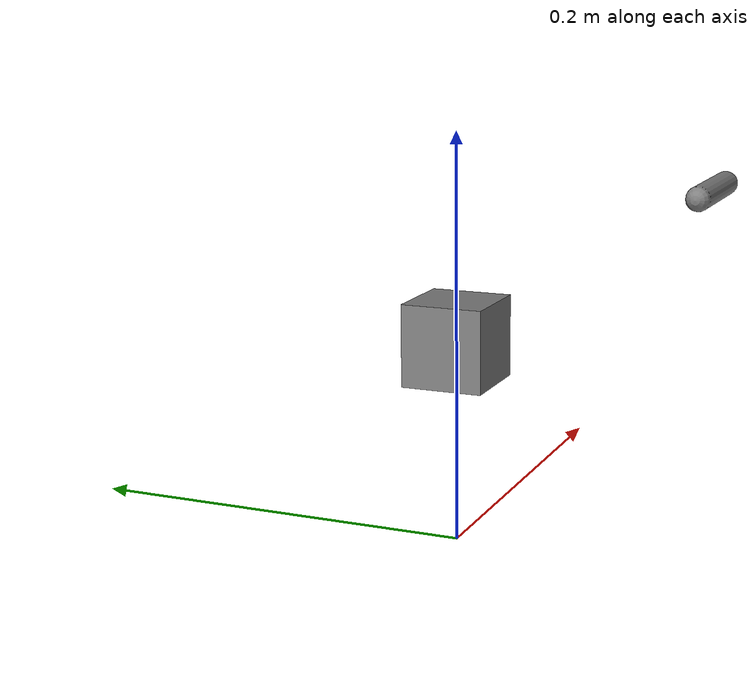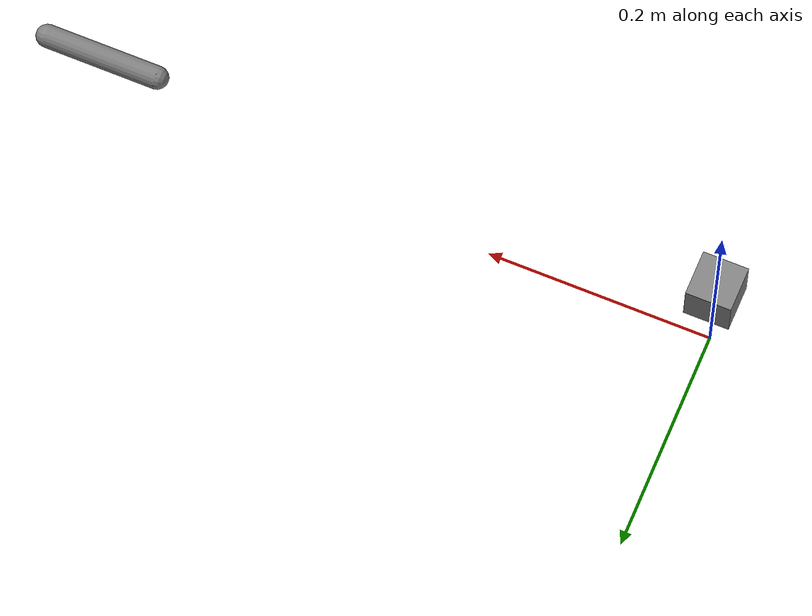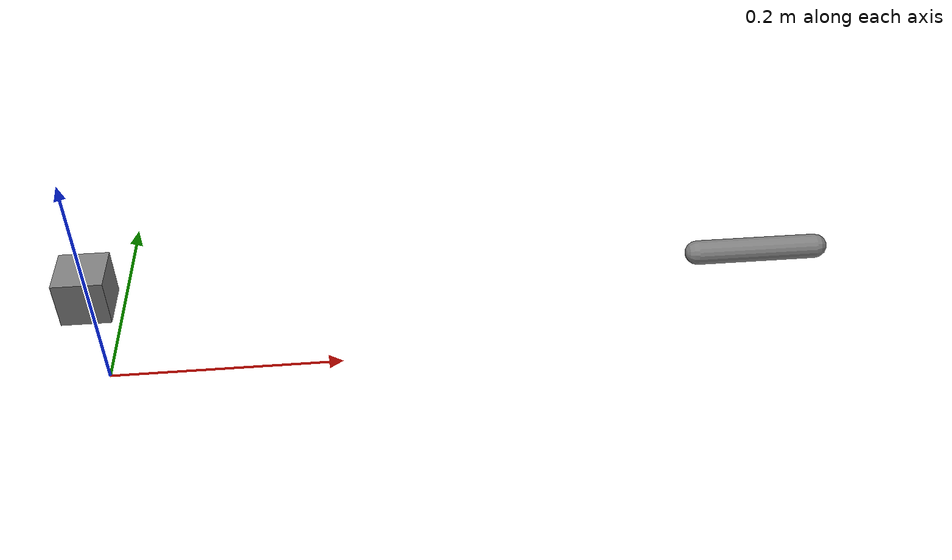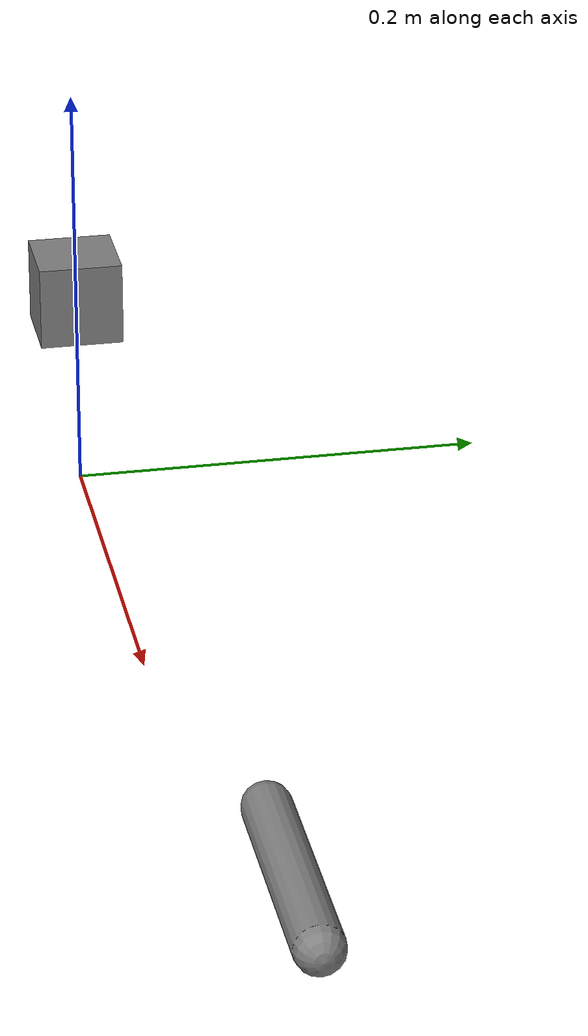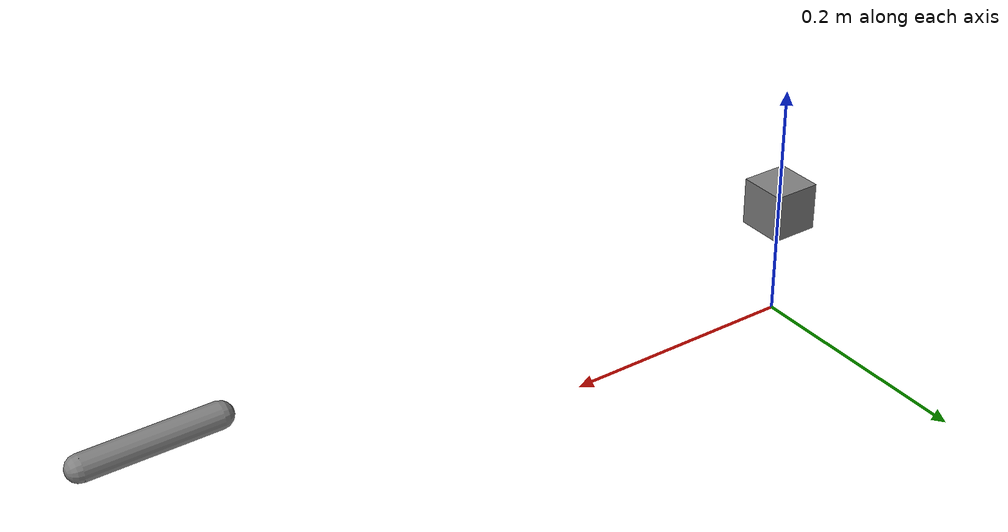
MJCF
<mujoco model="free_body_fixture">
  <worldbody>
    <body name="box" pos="0 0 0.1">
      <freejoint/>
      <geom type="box" size="0.02 0.02 0.02"/>
    </body>
    <body name="arm" pos="0.5 0 0.1">
      <joint name="hinge" type="hinge" axis="0 0 1"/>
      <geom type="capsule" size="0.01" fromto="0 0 0 0.1 0 0"/>
    </body>
  </worldbody>

  <keyframe>
    <key name="home" time="0" qpos="0.1 0.2 0.3 1 0 0 0 0.5"/>
  </keyframe>
</mujoco>
